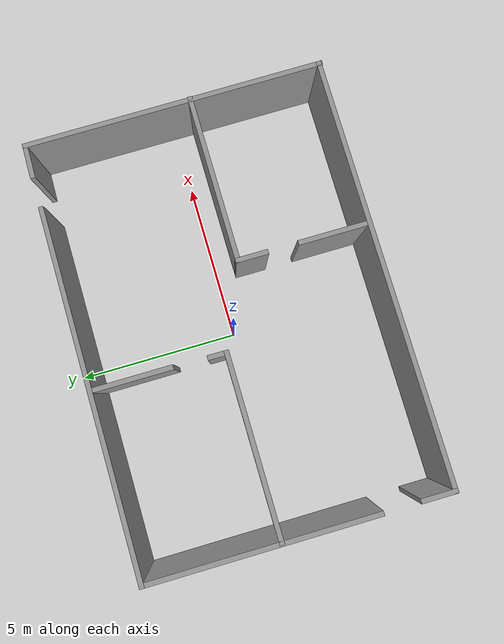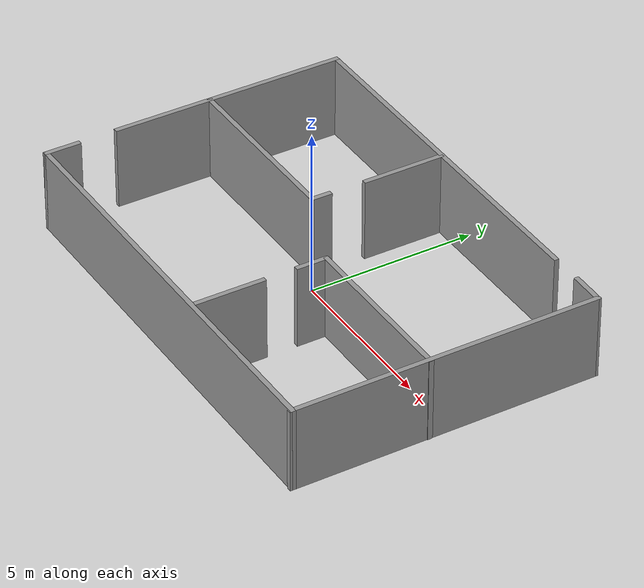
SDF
<?xml version='1.0'?>
<sdf version='1.6'>
  <model name='hw1'>
    <pose frame=''>0.400209 -0.136047 0 0 -0 0</pose>
    <link name='Wall_23'>
      <collision name='Wall_23_Collision'>
        <geometry>
          <box>
            <size>5.65 0.15 2.5</size>
          </box>
        </geometry>
        <pose frame=''>0 0 1.25 0 -0 0</pose>
      </collision>
      <visual name='Wall_23_Visual'>
        <pose frame=''>0 0 1.25 0 -0 0</pose>
        <geometry>
          <box>
            <size>5.65 0.15 2.5</size>
          </box>
        </geometry>
        <material>
          <script>
            <uri>file://media/materials/scripts/gazebo.material</uri>
            <name>Gazebo/Grey</name>
          </script>
          <ambient>1 1 1 1</ambient>
        </material>
        <meta>
          <layer>0</layer>
        </meta>
      </visual>
      <pose frame=''>-3.77862 0.526938 0 0 -0 3.14159</pose>
    </link>
    <link name='Wall_28'>
      <collision name='Wall_28_Collision'>
        <geometry>
          <box>
            <size>2.5 0.15 2.5</size>
          </box>
        </geometry>
        <pose frame=''>0 0 1.25 0 -0 0</pose>
      </collision>
      <visual name='Wall_28_Visual'>
        <pose frame=''>0 0 1.25 0 -0 0</pose>
        <geometry>
          <box>
            <size>2.5 0.15 2.5</size>
          </box>
        </geometry>
        <material>
          <script>
            <uri>file://media/materials/scripts/gazebo.material</uri>
            <name>Gazebo/Grey</name>
          </script>
          <ambient>1 1 1 1</ambient>
        </material>
        <meta>
          <layer>0</layer>
        </meta>
      </visual>
      <pose frame=''>-0.994457 3.35224 0 0 -0 1.5708</pose>
    </link>
    <link name='Wall_33'>
      <collision name='Wall_33_Collision'>
        <geometry>
          <box>
            <size>13.25 0.15 2.5</size>
          </box>
        </geometry>
        <pose frame=''>0 0 1.25 0 -0 0</pose>
      </collision>
      <visual name='Wall_33_Visual'>
        <pose frame=''>0 0 1.25 0 -0 0</pose>
        <geometry>
          <box>
            <size>13.25 0.15 2.5</size>
          </box>
        </geometry>
        <material>
          <script>
            <uri>file://media/materials/scripts/gazebo.material</uri>
            <name>Gazebo/Grey</name>
          </script>
          <ambient>1 1 1 1</ambient>
        </material>
        <meta>
          <layer>0</layer>
        </meta>
      </visual>
      <pose frame=''>0.003885 -4.55726 0 0 -0 0</pose>
    </link>
    <link name='Wall_37'>
      <collision name='Wall_37_Collision'>
        <geometry>
          <box>
            <size>9.30104 0.15 2.5</size>
          </box>
        </geometry>
        <pose frame=''>0 0 1.25 0 -0 0</pose>
      </collision>
      <visual name='Wall_37_Visual'>
        <pose frame=''>0 0 1.25 0 -0 0</pose>
        <geometry>
          <box>
            <size>9.30104 0.15 2.5</size>
          </box>
        </geometry>
        <material>
          <script>
            <uri>file://media/materials/scripts/gazebo.material</uri>
            <name>Gazebo/Grey</name>
          </script>
          <ambient>1 1 1 1</ambient>
        </material>
        <meta>
          <layer>0</layer>
        </meta>
      </visual>
      <pose frame=''>6.54565 -0.008347 0 0 0 -1.569</pose>
    </link>
    <link name='Wall_42'>
      <collision name='Wall_42_Collision'>
        <geometry>
          <box>
            <size>1.1 0.15 2.5</size>
          </box>
        </geometry>
        <pose frame=''>0 0 1.25 0 -0 0</pose>
      </collision>
      <visual name='Wall_42_Visual'>
        <pose frame=''>0 0 1.25 0 -0 0</pose>
        <geometry>
          <box>
            <size>1.1 0.15 2.5</size>
          </box>
        </geometry>
        <material>
          <script>
            <uri>file://media/materials/scripts/gazebo.material</uri>
            <name>Gazebo/Grey</name>
          </script>
          <ambient>1 1 1 1</ambient>
        </material>
        <meta>
          <layer>0</layer>
        </meta>
      </visual>
      <pose frame=''>-6.54612 -4.08226 0 0 -0 1.5708</pose>
    </link>
    <link name='Wall_48'>
      <collision name='Wall_48_Collision'>
        <geometry>
          <box>
            <size>7.1 0.15 2.5</size>
          </box>
        </geometry>
        <pose frame=''>0 0 1.25 0 -0 0</pose>
      </collision>
      <visual name='Wall_48_Visual'>
        <pose frame=''>0 0 1.25 0 -0 0</pose>
        <geometry>
          <box>
            <size>7.1 0.15 2.5</size>
          </box>
        </geometry>
        <material>
          <script>
            <uri>file://media/materials/scripts/gazebo.material</uri>
            <name>Gazebo/Grey</name>
          </script>
          <ambient>1 1 1 1</ambient>
        </material>
        <meta>
          <layer>0</layer>
        </meta>
      </visual>
      <pose frame=''>-6.56349 1.10585 0 0 -0 1.5708</pose>
    </link>
    <link name='Wall_50'>
      <collision name='Wall_50_Collision'>
        <geometry>
          <box>
            <size>2.25 0.15 2.5</size>
          </box>
        </geometry>
        <pose frame=''>0 0 1.25 0 -0 0</pose>
      </collision>
      <visual name='Wall_50_Visual'>
        <pose frame=''>0 0 1.25 0 -0 0</pose>
        <geometry>
          <box>
            <size>2.25 0.15 2.5</size>
          </box>
        </geometry>
        <material>
          <script>
            <uri>file://media/materials/scripts/gazebo.material</uri>
            <name>Gazebo/Grey</name>
          </script>
          <ambient>1 1 1 1</ambient>
        </material>
        <meta>
          <layer>0</layer>
        </meta>
      </visual>
      <pose frame=''>1.46349 -3.49405 0 0 0 -1.5708</pose>
    </link>
    <link name='Wall_52'>
      <collision name='Wall_52_Collision'>
        <geometry>
          <box>
            <size>1 0.15 2.5</size>
          </box>
        </geometry>
        <pose frame=''>0 0 1.25 0 -0 0</pose>
      </collision>
      <visual name='Wall_52_Visual'>
        <pose frame=''>0 0 1.25 0 -0 0</pose>
        <geometry>
          <box>
            <size>1 0.15 2.5</size>
          </box>
        </geometry>
        <material>
          <script>
            <uri>file://media/materials/scripts/gazebo.material</uri>
            <name>Gazebo/Grey</name>
          </script>
          <ambient>1 1 1 1</ambient>
        </material>
        <meta>
          <layer>0</layer>
        </meta>
      </visual>
      <pose frame=''>1.46349 -0.957695 0 0 -0 1.5708</pose>
    </link>
    <link name='Wall_55'>
      <collision name='Wall_55_Collision'>
        <geometry>
          <box>
            <size>5.25 0.15 2.5</size>
          </box>
        </geometry>
        <pose frame=''>0 0 1.25 0 -0 0</pose>
      </collision>
      <visual name='Wall_55_Visual'>
        <pose frame=''>0 0 1.25 0 -0 0</pose>
        <geometry>
          <box>
            <size>5.25 0.15 2.5</size>
          </box>
        </geometry>
        <material>
          <script>
            <uri>file://media/materials/scripts/gazebo.material</uri>
            <name>Gazebo/Grey</name>
          </script>
          <ambient>1 1 1 1</ambient>
        </material>
        <meta>
          <layer>0</layer>
        </meta>
      </visual>
      <pose frame=''>4.01349 -0.532695 0 0 -0 0</pose>
    </link>
    <link name='Wall_59'>
      <collision name='Wall_59_Collision'>
        <geometry>
          <box>
            <size>0.648992 0.15 2.5</size>
          </box>
        </geometry>
        <pose frame=''>0 0 1.25 0 -0 0</pose>
      </collision>
      <visual name='Wall_59_Visual'>
        <pose frame=''>0 0 1.25 0 -0 0</pose>
        <geometry>
          <box>
            <size>0.648992 0.15 2.5</size>
          </box>
        </geometry>
        <material>
          <script>
            <uri>file://media/materials/scripts/gazebo.material</uri>
            <name>Gazebo/Grey</name>
          </script>
          <ambient>1 1 1 1</ambient>
        </material>
        <meta>
          <layer>0</layer>
        </meta>
      </visual>
      <pose frame=''>-1.0259 0.776419 0 0 0 -1.58167</pose>
    </link>
    <link name='Wall_64'>
      <collision name='Wall_64_Collision'>
        <geometry>
          <box>
            <size>11.25 0.15 2.5</size>
          </box>
        </geometry>
        <pose frame=''>0 0 1.25 0 -0 0</pose>
      </collision>
      <visual name='Wall_64_Visual'>
        <pose frame=''>0 0 1.25 0 -0 0</pose>
        <geometry>
          <box>
            <size>11.25 0.15 2.5</size>
          </box>
        </geometry>
        <material>
          <script>
            <uri>file://media/materials/scripts/gazebo.material</uri>
            <name>Gazebo/Grey</name>
          </script>
          <ambient>1 1 1 1</ambient>
        </material>
        <meta>
          <layer>0</layer>
        </meta>
      </visual>
      <pose frame=''>-1.01349 4.58085 0 0 -0 0</pose>
    </link>
    <link name='Wall_66'>
      <collision name='Wall_66_Collision'>
        <geometry>
          <box>
            <size>1.09996 0.15 2.5</size>
          </box>
        </geometry>
        <pose frame=''>0 0 1.25 0 -0 0</pose>
      </collision>
      <visual name='Wall_66_Visual'>
        <pose frame=''>0 0 1.25 0 -0 0</pose>
        <geometry>
          <box>
            <size>1.09996 0.15 2.5</size>
          </box>
        </geometry>
        <material>
          <script>
            <uri>file://media/materials/scripts/gazebo.material</uri>
            <name>Gazebo/Grey</name>
          </script>
          <ambient>1 1 1 1</ambient>
        </material>
        <meta>
          <layer>0</layer>
        </meta>
      </visual>
      <pose frame=''>6.0625 4.57497 0 0 0 -0.01643</pose>
    </link>
    <static>1</static>
  </model>
</sdf>
